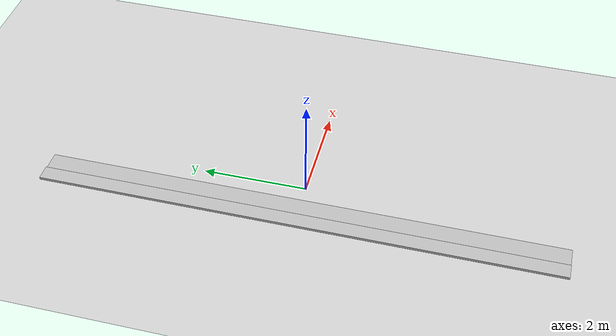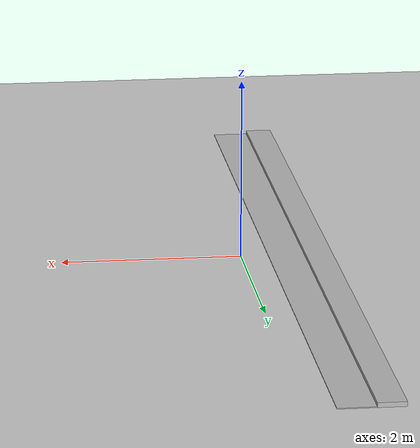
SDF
<?xml version="1.0"?>
<sdf version="1.6">
	<world name="myworld">
		<include>
			<uri>model://sun</uri>
		</include>
		<include>
			<uri>model://ground_plane</uri>
		</include>
		<physics type='quick'>
			<real_time_update_rate>0.000000</real_time_update_rate>
			<max_step_size>0.0003</max_step_size>
		</physics>
		<model name ='box'>
			<pose>-0.5 0 0.005 0 0 0</pose>
			<link name ='0.4x10x0.01'>
				<pose>0 0 0 0 0 0</pose>
				<collision name ='collision'>
					<geometry>
						<box><size>0.4 10 0.01</size></box>
					</geometry>
				</collision>
				<visual name ='visual'>
					<geometry>
						<box><size>0.4 10 0.01</size></box>
					</geometry>
				</visual>
				<inertial>
					<mass value="1000"/>
				</inertial>
			</link>
		</model>
		<model name ='box2'>
			<pose>-0.85 0 0.025 0 0 0</pose>
			<link name ='0.3x10x0.05'>
				<pose>0 0 0 0 0 0</pose>
				<collision name ='collision'>
					<geometry>
						<box><size>0.3 10 0.05</size></box>
					</geometry>
				</collision>
				<visual name ='visual'>
					<geometry>
						<box><size>0.3 10 0.05</size></box>
					</geometry>
				</visual>
				<inertial>
					<mass value="1000"/>
				</inertial>
			</link>
		</model>
		<model name = 'goal'>
			<pose>-1 0 0.001 0 0 0</pose>
			<link name ='goal'>
				<pose>0 0 0 0 0 0</pose>
				<collision name ='collision'>
					<geometry>
						<box><size>0.001 10 0.002</size></box>
					</geometry>
				</collision>
				<visual name ='visual'>
					<geometry>
						<box><size>0.001 10 0.002</size></box>
					</geometry>
				</visual>
				<inertial>
					<mass value="1000"/>
				</inertial>
			</link>
			<joint name="f1" type="fixed">
				<parent link="base"/>
				<child link="top"/>
			</joint>
		</model>
	</world>
</sdf>
